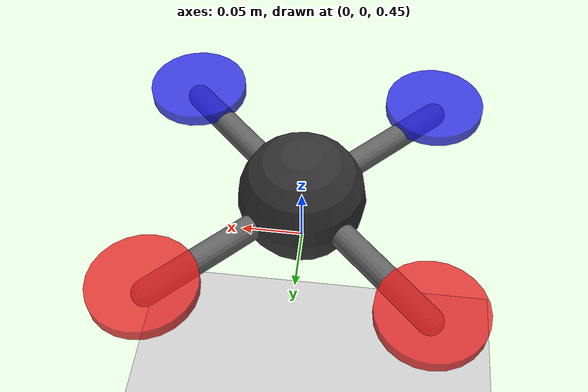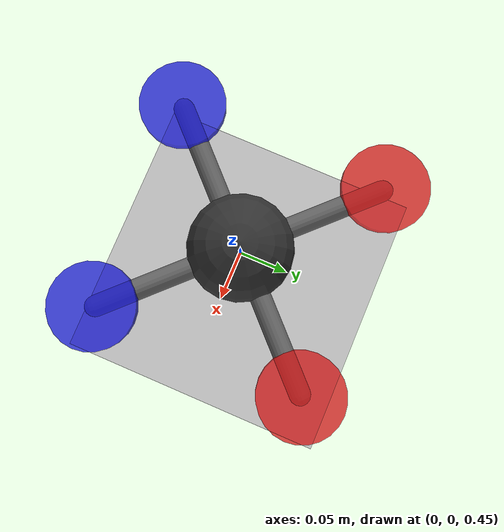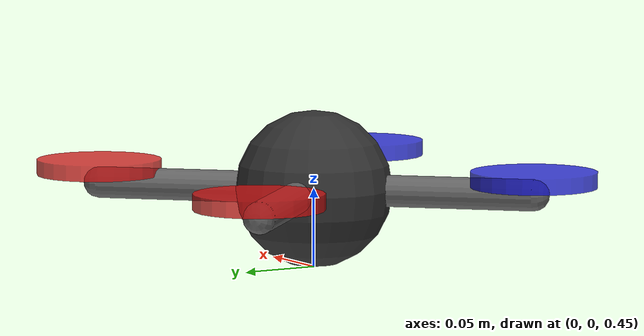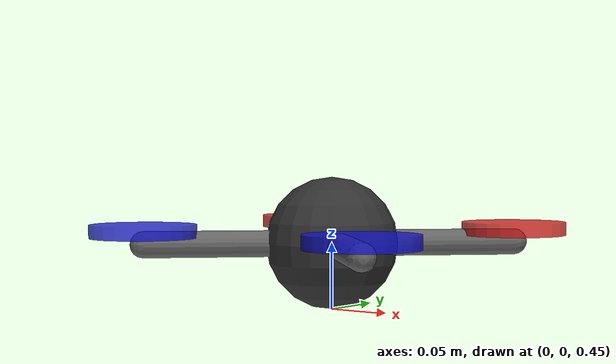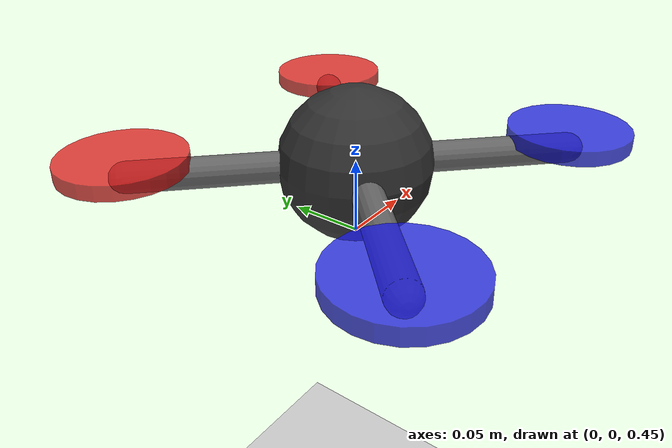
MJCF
<mujoco model="quadcopter">
  <compiler angle="degree" coordinate="local"/>
  <option gravity="0 0 -9.81" timestep="0.005" iterations="50"/>

  <worldbody>
    <light pos="0 0 5" dir="0 0 -1"/>
    <geom name="floor" type="plane" size="5 5 0.1" rgba="0.8 0.8 0.8 1"/>

    <!-- 6-DOF Quadcopter Root Body -->
    <body name="base_link" pos="0 0 0.5">
      <freejoint name="root"/>

      <!-- Central Body Frame Site for Visualization -->
      <site name="body_frame_site" pos="0 0 0" size="0.01"/>

      <!-- Central Drone Hub -->
      <geom name="hub" type="sphere" size="0.05" mass="0.4" rgba="0.2 0.2 0.2 1"/>

      <!-- Arm 1 (Front Right) -->
      <body name="arm1" pos="0.1 0.1 0">
        <geom type="capsule" fromto="0 0 0 -0.1 -0.1 0" size="0.01" mass="0.05" rgba="0.4 0.4 0.4 1"/>
        <geom type="cylinder" size="0.04 0.005" pos="0 0 0.01" mass="0.02" rgba="0.9 0.1 0.1 0.8"/>
      </body>

      <!-- Arm 2 (Front Left) -->
      <body name="arm2" pos="-0.1 0.1 0">
        <geom type="capsule" fromto="0 0 0 0.1 -0.1 0" size="0.01" mass="0.05" rgba="0.4 0.4 0.4 1"/>
        <geom type="cylinder" size="0.04 0.005" pos="0 0 0.01" mass="0.02" rgba="0.9 0.1 0.1 0.8"/>
      </body>

      <!-- Arm 3 (Rear Left) -->
      <body name="arm3" pos="-0.1 -0.1 0">
        <geom type="capsule" fromto="0 0 0 0.1 0.1 0" size="0.01" mass="0.05" rgba="0.4 0.4 0.4 1"/>
        <geom type="cylinder" size="0.04 0.005" pos="0 0 0.01" mass="0.02" rgba="0.1 0.1 0.9 0.8"/>
      </body>

      <!-- Arm 4 (Rear Right) -->
      <body name="arm4" pos="0.1 -0.1 0">
        <geom type="capsule" fromto="0 0 0 -0.1 0.1 0" size="0.01" mass="0.05" rgba="0.4 0.4 0.4 1"/>
        <geom type="cylinder" size="0.04 0.005" pos="0 0 0.01" mass="0.02" rgba="0.1 0.1 0.9 0.8"/>
      </body>
    </body>
  </worldbody>
</mujoco>
